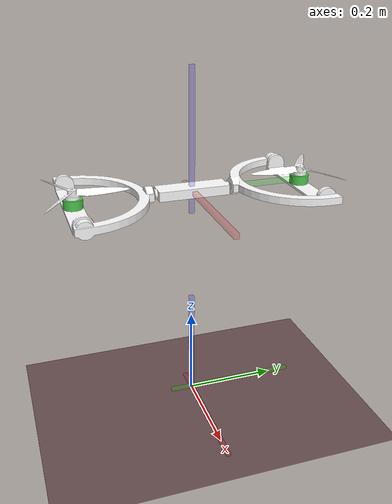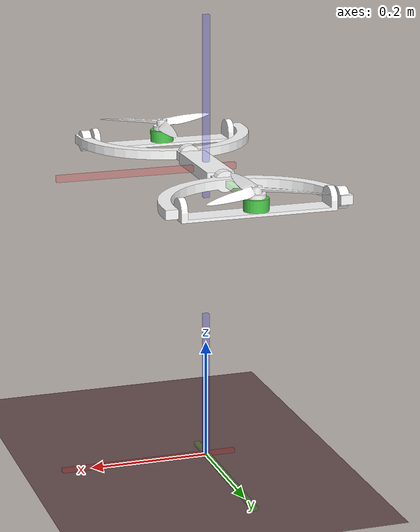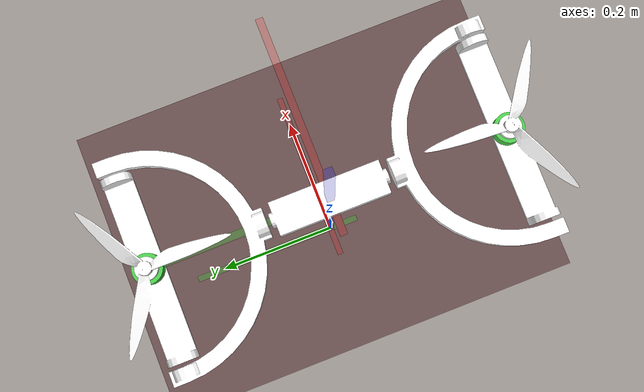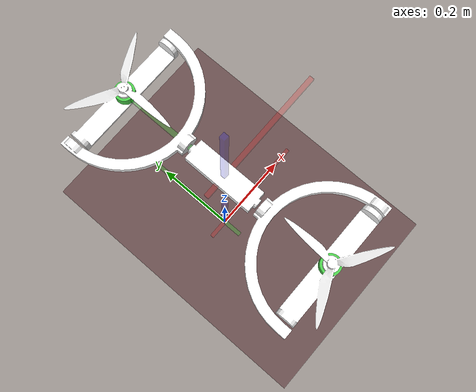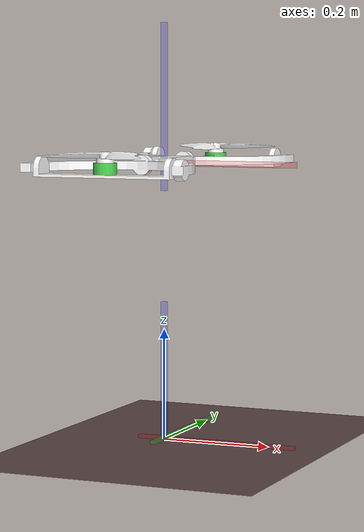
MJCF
<mujoco model="FA_Drone">
  <compiler angle="radian" meshdir="meshes_FA/" balanceinertia="true" />
  <option impratio="1" gravity="0 0 -9.81" integrator="implicit" density="1.225" viscosity="1.789e-5">
  </option>

  <visual>
    <global offwidth="3000" offheight="3000"/>
  </visual>

  <asset>
    <texture builtin="gradient" type="skybox" height="100" width="100" rgb1="1 1 1" rgb2=".6 .8 1"/>
    <texture name="texgeom" builtin="flat" height="1278" mark="cross" markrgb="1 1 1" random="0.01" rgb1="0.8 0.6 0.4" rgb2="0.8 0.6 0.4" type="cube" width="127"/>
    <texture name="texplane" builtin="checker" height="100" width="100" rgb1="0 0 0" rgb2="0.8 0.8 0.8" type="2d"/>
    <material name="MatPlane" reflectance="0.5" shininess="1" specular="1" texrepeat="60 60" texture="texplane"/>
    <mesh name="Base" file="Base.STL"/>
    <mesh name="Arm1_1" file="Arm1_1.STL"/>
    <mesh name="Arm2_1" file="Arm2_1.STL"/>
    <mesh name="Arm1_2" file="Arm1_2.STL"/>
    <mesh name="Arm2_2" file="Arm2_2.STL"/>
  </asset>

  <default>
    <geom contype="0" conaffinity="0" condim="1" solref="0.001 1"/>
    <equality solref="1e-10 1"/>
    <default class="visual">
      <geom group="2" type="mesh" contype="0" conaffinity="0" rgba="1 1 1 1" density="0" />
    </default>
    <default class="collision">
      <geom contype="1" group="3" type="mesh"/>
    </default>
  </default>

  <worldbody>
    <light cutoff="100" diffuse="1 1 1" dir="-0 0 -1.3" directional="true" exponent="1" pos="0 0 1.3" specular=".1 .1 .1"/>
    <geom contype="1" conaffinity="1" condim="3" material="MatPlane" name="floor" pos="0 0 0" rgba="0.4 0.3 0.3 1" size="5 5 0.2" type="plane"/>
    <body name='Base' pos='0 0 0.5' quat="1 0 0 0">
      <freejoint/>
      <geom class="collision" mesh="Base"/>
      <geom class="visual" mesh="Base"/>
      <inertial pos="0 0 0" quat="1 0 0 0" mass="0.372" diaginertia="7.4676e-04 7.408e-05 7.9612e-04"/>
      <body name="Arm1_1" pos="0 -0.085 0">
        <inertial pos="0.0057114 -0.076571 0" quat="0.0230564 0.706731 -0.0230564 0.706731" mass="0.1671" diaginertia="0.0021725 0.0017032 0.000478969"/>
        <joint name="J1_1" type='hinge' pos="0 0 0" axis="0 -1 0" damping="0.1"/>
        <geom class="collision" mesh="Arm1_1"/>
        <geom class="visual" mesh="Arm1_1"/>
        <body name="Arm2_1" pos="0 -0.16 0">
          <inertial pos="7.421e-07 1.5047e-07 -0.0032985" quat="1.35189e-06 0.707107 -1.35189e-06 0.707107" mass="0.097595" diaginertia="0.00058352 0.0005727 2.3471e-05"/>
          <joint name="J2_1" type='hinge' pos="0 0 0" axis="1 0 0" damping="0.1"/>
          <geom class="collision" mesh="Arm2_1"/>
          <geom class="visual" mesh="Arm2_1"/>
          <site name="motor1" type="cylinder" pos="0 0 0" size=".02 .01" quat="1 0 0 0" rgba=".3 .8 .3 1"/> Right
        </body>
      </body>

      <body name="Arm1_2" pos="0 0.085 0">
        <inertial pos="-0.0057114 0.076571 0" quat="0.0230564 0.706731 -0.0230564 0.706731" mass="0.1671" diaginertia="0.0021725 0.0017032 0.000478969"/>
        <joint name="J1_2" type='hinge' pos="0 0 0" axis="0 1 0" damping="0.1"/>
        <geom class="collision" mesh="Arm1_2"/>
        <geom class="visual" mesh="Arm1_2"/>
        <body name="Arm2_2" pos="0 0.16 0">
          <inertial pos="1.7925e-06 4.7152e-08 -0.0032972" quat="-2.24978e-06 0.707107 2.24978e-06 0.707107" mass="0.097601" diaginertia="0.00058353 0.0005727 2.3475e-05"/>
          <joint name="J2_2" type='hinge' pos="0 0 0" axis="-1 0 0" damping="0.1"/>
          <geom class="collision" mesh="Arm2_2"/>
          <geom class="visual" mesh="Arm2_2"/>
          <site name="motor2" type="cylinder" pos="0 0 0" size=".02 .01" quat="1 0 0 0" rgba=".3 .8 .3 1"/> Left
        </body>
      </body>

      <site name="body_frame" pos="0 0 0" quat="1 0 0 0"/>
      <site name="x_axis_b" type="box" pos=".1 .0 .0" size=".15 .005 .005" quat="1 0 0 0" rgba="1 0 0 0.2"/>
      <site name="y_axis_b" type="box" pos=".0 .1 .0" size=".15 .005 .005" quat=".707 0 0 .707" rgba="0 1 0 0.2"/>
      <site name="z_axis_b" type="box" pos=".0 .0 .1" size=".15 .005 .005" quat="-.707 0 .707 0" rgba="0 0 1 0.2"/>
    </body>
    <site name="x_axis" type="box" pos=".1 .0 .0" size=".15 .005 .005" quat="1 0 0 0" rgba="1 0 0 0.2"/>
    <site name="y_axis" type="box" pos=".0 .1 .0" size=".15 .005 .005" quat=".707 0 0 .707" rgba="0 1 0 0.2"/>
    <site name="z_axis" type="box" pos=".0 .0 .1" size=".15 .005 .005" quat="-.707 0 .707 0" rgba="0 0 1 0.2"/>
  </worldbody>

  <sensor>
    <framepos name="Body_pos" objtype="site" objname="body_frame"/>       <!-- datasensor[0:3] -->
    <framequat name="Body_quat" objtype="site" objname="body_frame"/>     <!-- datasensor[3:7] -->
    <framelinvel name="Body_linvel" objtype="site" objname="body_frame"/> <!-- datasensor[7:10] -->
    <gyro name="Body_angvel_local" site="body_frame"/>                    <!-- datasensor[10:13] -->
  </sensor>

  <actuator>
    <motor name="Motor1" ctrllimited="true" ctrlrange="0 1" gear="0  0. 9 0. 0. -0.144" site="motor1"/> unit: N
    <motor name="Motor2" ctrllimited="true" ctrlrange="0 1" gear="0  0. 9 0. 0. 0.144" site="motor2"/>
    <position name="Servo1_1" joint="J1_1" kp="2" ctrllimited="true" ctrlrange="-5 5"/>
    <position name="Servo2_1" joint="J2_1" kp="2" ctrllimited="true" ctrlrange="-5 5"/>
    <position name="Servo1_2" joint="J1_2" kp="2" ctrllimited="true" ctrlrange="-5 5"/>
    <position name="Servo2_2" joint="J2_2" kp="2" ctrllimited="true" ctrlrange="-5 5"/>
    <velocity name="Servo1_1_" joint="J1_1" kv="0.1"/>
    <velocity name="Servo2_1_" joint="J2_1" kv="0.1"/>
    <velocity name="Servo1_2_" joint="J1_2" kv="0.1"/>
    <velocity name="Servo2_2_" joint="J2_2" kv="0.1"/>
  </actuator>

</mujoco>
